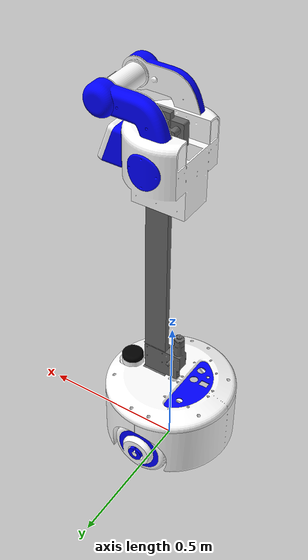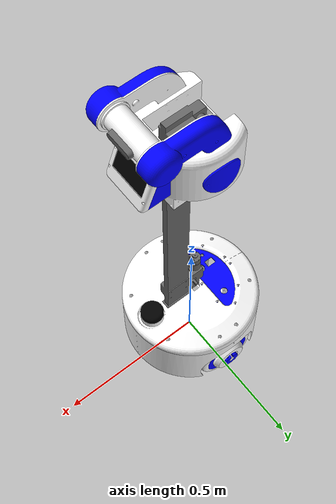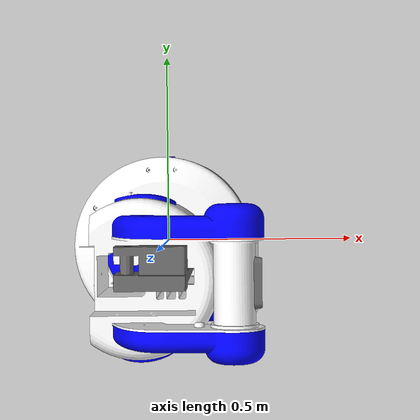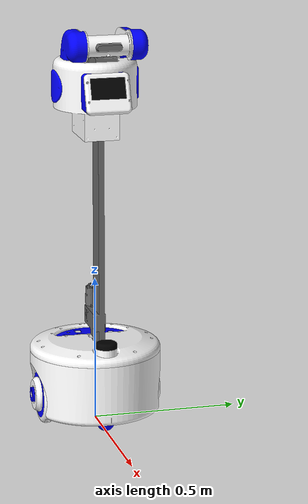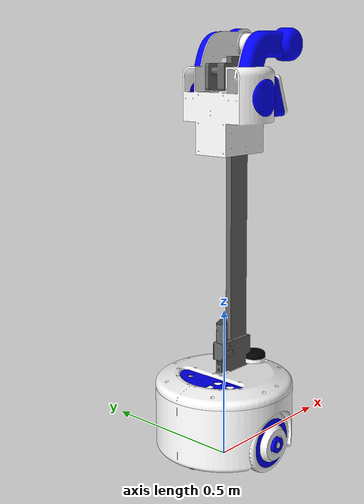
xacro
<?xml version="1.0" ?>
<robot name="rur_detailed" xmlns:xacro="http://www.ros.org/wiki/xacro">

<xacro:include filename="$(find rur_detailed_description)/urdf/materials.xacro" />

<xacro:include filename="$(find rur_detailed_description)/gazebo/rur_detailed_materials.gazebo" />
<xacro:include filename="$(find rur_detailed_description)/gazebo/rur_detailed_physics.gazebo" />
<xacro:include filename="$(find rur_detailed_description)/gazebo/rur_detailed_plugins.gazebo" />

<link name="base_link">
  <inertial>
    <origin rpy="0 0 0" xyz="0.008717050480319273 0.0013081620436010979 0.15115173825671988"/>
    <mass value="15.428530536945836"/>
    <inertia ixx="0.257115" ixy="0.001043" ixz="-0.003282" iyy="0.342385" iyz="-0.001055" izz="0.481029"/>
  </inertial>
  <visual>
    <origin rpy="0 0 0" xyz="0 0 0"/>
    <geometry>
      <mesh filename="package://rur_detailed_description/meshes/base_link.stl" scale="0.001 0.001 0.001"/>
    </geometry>
    <material name="white"/>
  </visual>
  <collision>
    <origin rpy="0 0 0" xyz="0 0 0"/>
    <geometry>
      <mesh filename="package://rur_detailed_description/meshes/base_link.stl" scale="0.001 0.001 0.001"/>
    </geometry>
  </collision>
</link>

<link name="right_wheel">
  <inertial>
    <origin rpy="0 0 0" xyz="-1.828063402709465e-05 0.05312247246161367 0.0002521115303902449"/>
    <mass value="9.856921104469992"/>
    <inertia ixx="0.020599" ixy="-7e-06" ixz="2e-06" iyy="0.03491" iyz="-2.8e-05" izz="0.020606"/>
  </inertial>
  <visual>
    <origin rpy="0 0 0" xyz="-0.0 0.227 -0.099839"/>
    <geometry>
      <mesh filename="package://rur_detailed_description/meshes/right_wheel.stl" scale="0.001 0.001 0.001"/>
    </geometry>
    <material name="blue"/>
  </visual>
  <collision>
    <origin rpy="0 0 0" xyz="-0.0 0.227 -0.099839"/>
    <geometry>
      <mesh filename="package://rur_detailed_description/meshes/right_wheel.stl" scale="0.001 0.001 0.001"/>
    </geometry>
  </collision>
</link>

<link name="left_wheel">
  <inertial>
    <origin rpy="0 0 0" xyz="-1.8254554994090065e-05 -0.0531169103077688 0.0002522130405125389"/>
    <mass value="9.871217353742987"/>
    <inertia ixx="0.020624" ixy="7e-06" ixz="2e-06" iyy="0.034948" iyz="2.8e-05" izz="0.020631"/>
  </inertial>
  <visual>
    <origin rpy="0 0 0" xyz="0.0 -0.227 -0.099839"/>
    <geometry>
      <mesh filename="package://rur_detailed_description/meshes/left_wheel.stl" scale="0.001 0.001 0.001"/>
    </geometry>
    <material name="blue"/>
  </visual>
  <collision>
    <origin rpy="0 0 0" xyz="0.0 -0.227 -0.099839"/>
    <geometry>
      <mesh filename="package://rur_detailed_description/meshes/left_wheel.stl" scale="0.001 0.001 0.001"/>
    </geometry>
  </collision>
</link>

<link name="right_tyre">
  <inertial>
    <origin rpy="0 0 0" xyz="-5.919068486634321e-08 0.011578960710706687 0.00016105311301901903"/>
    <mass value="4.766678644162142"/>
    <inertia ixx="0.012277" ixy="-0.0" ixz="0.0" iyy="0.022304" iyz="-0.0" izz="0.012277"/>
  </inertial>
  <visual>
    <origin rpy="0 0 0" xyz="-0.0 0.2 -0.1"/>
    <geometry>
      <mesh filename="package://rur_detailed_description/meshes/right_tyre.stl" scale="0.001 0.001 0.001"/>
    </geometry>
    <material name="white"/>
  </visual>
  <collision>
    <origin rpy="0 0 0" xyz="-0.0 0.2 -0.1"/>
    <geometry>
      <mesh filename="package://rur_detailed_description/meshes/right_tyre.stl" scale="0.001 0.001 0.001"/>
    </geometry>
  </collision>
</link>

<link name="left_tyre">
  <inertial>
    <origin rpy="0 0 0" xyz="9.30327782468428e-09 -0.011578963887744514 0.000161051324790773"/>
    <mass value="4.766678875971219"/>
    <inertia ixx="0.012277" ixy="0.0" ixz="-0.0" iyy="0.022304" iyz="0.0" izz="0.012277"/>
  </inertial>
  <visual>
    <origin rpy="0 0 0" xyz="0.0 -0.2 -0.1"/>
    <geometry>
      <mesh filename="package://rur_detailed_description/meshes/left_tyre.stl" scale="0.001 0.001 0.001"/>
    </geometry>
    <material name="white"/>
  </visual>
  <collision>
    <origin rpy="0 0 0" xyz="0.0 -0.2 -0.1"/>
    <geometry>
      <mesh filename="package://rur_detailed_description/meshes/left_tyre.stl" scale="0.001 0.001 0.001"/>
    </geometry>
  </collision>
</link>

<link name="front_caster">
  <inertial>
    <origin rpy="0 0 0" xyz="-0.025000797505036393 -2.9865544783409456e-16 -0.030208086053412367"/>
    <mass value="0.4573656248802168"/>
    <inertia ixx="0.000244" ixy="-0.0" ixz="0.0" iyy="0.000244" iyz="0.0" izz="0.000192"/>
  </inertial>
  <visual>
    <origin rpy="0 0 0" xyz="-0.172 -0.0 -0.07"/>
    <geometry>
      <mesh filename="package://rur_detailed_description/meshes/front_caster.stl" scale="0.001 0.001 0.001"/>
    </geometry>
    <material name="blue"/>
  </visual>
  <collision>
    <origin rpy="0 0 0" xyz="-0.172 -0.0 -0.07"/>
    <geometry>
      <mesh filename="package://rur_detailed_description/meshes/front_caster.stl" scale="0.001 0.001 0.001"/>
    </geometry>
  </collision>
</link>

<link name="back_caster">
  <inertial>
    <origin rpy="0 0 0" xyz="0.024999202494963513 -3.2214520215812444e-16 -0.030208086053412374"/>
    <mass value="0.4573656248802169"/>
    <inertia ixx="0.000244" ixy="-0.0" ixz="0.0" iyy="0.000244" iyz="0.0" izz="0.000192"/>
  </inertial>
  <visual>
    <origin rpy="0 0 0" xyz="0.172 0.0 -0.07"/>
    <geometry>
      <mesh filename="package://rur_detailed_description/meshes/back_caster.stl" scale="0.001 0.001 0.001"/>
    </geometry>
    <material name="blue"/>
  </visual>
  <collision>
    <origin rpy="0 0 0" xyz="0.172 0.0 -0.07"/>
    <geometry>
      <mesh filename="package://rur_detailed_description/meshes/back_caster.stl" scale="0.001 0.001 0.001"/>
    </geometry>
  </collision>
</link>

<link name="lid">
  <inertial>
    <origin rpy="0 0 0" xyz="-0.20973058370001274 -0.0002000297507654507 0.021779111268977636"/>
    <mass value="18.187373287828525"/>
    <inertia ixx="0.290093" ixy="0.0" ixz="-0.003295" iyy="0.300261" iyz="0.0" izz="0.584949"/>
  </inertial>
  <visual>
    <origin rpy="0 0 0" xyz="-0.225 -0.0002 -0.25"/>
    <geometry>
      <mesh filename="package://rur_detailed_description/meshes/lid.stl" scale="0.001 0.001 0.001"/>
    </geometry>
    <material name="white"/>
  </visual>
  <collision>
    <origin rpy="0 0 0" xyz="-0.225 -0.0002 -0.25"/>
    <geometry>
      <mesh filename="package://rur_detailed_description/meshes/lid.stl" scale="0.001 0.001 0.001"/>
    </geometry>
  </collision>
</link>

<link name="lidar">
  <inertial>
    <origin rpy="0 0 0" xyz="-2.3483549826952554e-09 -3.4770506128023716e-07 0.009561590682608923"/>
    <mass value="0.0886181648250366"/>
    <inertia ixx="3.3e-05" ixy="0.0" ixz="0.0" iyy="3.3e-05" iyz="0.0" izz="6e-05"/>
  </inertial>
  <visual>
    <origin rpy="0 0 0" xyz="-0.1575 0.0 -0.3"/>
    <geometry>
      <mesh filename="package://rur_detailed_description/meshes/lidar.stl" scale="0.001 0.001 0.001"/>
    </geometry>
    <material name="black"/>
  </visual>
  <collision>
    <origin rpy="0 0 0" xyz="-0.1575 0.0 -0.3"/>
    <geometry>
      <mesh filename="package://rur_detailed_description/meshes/lidar.stl" scale="0.001 0.001 0.001"/>
    </geometry>
  </collision>
</link>

<link name="electronics_lid">
  <inertial>
    <origin rpy="0 0 0" xyz="-0.0511574994774171 -0.011997734212864706 -0.0015000000000000568"/>
    <mass value="0.633989646973267"/>
    <inertia ixx="0.003384" ixy="-9e-06" ixz="-0.0" iyy="0.000771" iyz="0.0" izz="0.004153"/>
  </inertial>
  <visual>
    <origin rpy="0 0 0" xyz="0.035 -0.015 -0.28"/>
    <geometry>
      <mesh filename="package://rur_detailed_description/meshes/electronics_lid.stl" scale="0.001 0.001 0.001"/>
    </geometry>
    <material name="blue"/>
  </visual>
  <collision>
    <origin rpy="0 0 0" xyz="0.035 -0.015 -0.28"/>
    <geometry>
      <mesh filename="package://rur_detailed_description/meshes/electronics_lid.stl" scale="0.001 0.001 0.001"/>
    </geometry>
  </collision>
</link>

<link name="long_bar">
  <inertial>
    <origin rpy="0 0 0" xyz="0.03584192761999582 0.003225175684225926 0.4595434632519135"/>
    <mass value="7.553317644619513"/>
    <inertia ixx="1.13396" ixy="-0.000125" ixz="-0.002615" iyy="1.139907" iyz="-0.018664" izz="0.009557"/>
  </inertial>
  <visual>
    <origin rpy="0 0 0" xyz="-0.015 -0.0 -0.291"/>
    <geometry>
      <mesh filename="package://rur_detailed_description/meshes/long_bar.stl" scale="0.001 0.001 0.001"/>
    </geometry>
    <material name="grey"/>
  </visual>
  <collision>
    <origin rpy="0 0 0" xyz="-0.015 -0.0 -0.291"/>
    <geometry>
      <mesh filename="package://rur_detailed_description/meshes/long_bar.stl" scale="0.001 0.001 0.001"/>
    </geometry>
  </collision>
</link>

<link name="head">
  <inertial>
    <origin rpy="0 0 0" xyz="-0.07213061988974884 -0.0012048920814073697 0.13382726687589575"/>
    <mass value="23.76468895609019"/>
    <inertia ixx="0.240639" ixy="-0.001586" ixz="-0.018983" iyy="0.24109" iyz="-0.000966" izz="0.174627"/>
  </inertial>
  <visual>
    <origin rpy="0 0 0" xyz="-0.111 -0.0 -1.005"/>
    <geometry>
      <mesh filename="package://rur_detailed_description/meshes/head.stl" scale="0.001 0.001 0.001"/>
    </geometry>
    <material name="white"/>
  </visual>
  <collision>
    <origin rpy="0 0 0" xyz="-0.111 -0.0 -1.005"/>
    <geometry>
      <mesh filename="package://rur_detailed_description/meshes/head.stl" scale="0.001 0.001 0.001"/>
    </geometry>
  </collision>
</link>

<link name="visor">
  <inertial>
    <origin rpy="0 0 0" xyz="0.02896510148077766 0.0680499999999997 0.031790396670437815"/>
    <mass value="1.3383367623018805"/>
    <inertia ixx="0.007337" ixy="-0.0" ixz="0.000383" iyy="0.002215" iyz="0.0" izz="0.005868"/>
  </inertial>
  <visual>
    <origin rpy="0 0 0" xyz="-0.1393 0.068 -1.129264"/>
    <geometry>
      <mesh filename="package://rur_detailed_description/meshes/visor.stl" scale="0.001 0.001 0.001"/>
    </geometry>
    <material name="blue"/>
  </visual>
  <collision>
    <origin rpy="0 0 0" xyz="-0.1393 0.068 -1.129264"/>
    <geometry>
      <mesh filename="package://rur_detailed_description/meshes/visor.stl" scale="0.001 0.001 0.001"/>
    </geometry>
  </collision>
</link>

<link name="monitor_cover">
  <inertial>
    <origin rpy="0 0 0" xyz="0.025963694079177757 0.06804999764452557 -0.03724939393816329"/>
    <mass value="1.1102091778876433"/>
    <inertia ixx="0.005505" ixy="0.0" ixz="0.000808" iyy="0.002557" iyz="-0.0" izz="0.003622"/>
  </inertial>
  <visual>
    <origin rpy="0 0 0" xyz="-0.172658 0.068 -1.211058"/>
    <geometry>
      <mesh filename="package://rur_detailed_description/meshes/monitor_cover.stl" scale="0.001 0.001 0.001"/>
    </geometry>
    <material name="white"/>
  </visual>
  <collision>
    <origin rpy="0 0 0" xyz="-0.172658 0.068 -1.211058"/>
    <geometry>
      <mesh filename="package://rur_detailed_description/meshes/monitor_cover.stl" scale="0.001 0.001 0.001"/>
    </geometry>
  </collision>
</link>

<link name="right_ear">
  <inertial>
    <origin rpy="0 0 0" xyz="0.04558838834048603 -0.006250460774062022 2.75422459194985e-06"/>
    <mass value="0.05021038391016931"/>
    <inertia ixx="3.7e-05" ixy="-2e-06" ixz="0.0" iyy="7.5e-05" iyz="-0.0" izz="3.9e-05"/>
  </inertial>
  <visual>
    <origin rpy="0 0 0" xyz="0.02025 0.134173 -1.18"/>
    <geometry>
      <mesh filename="package://rur_detailed_description/meshes/right_ear.stl" scale="0.001 0.001 0.001"/>
    </geometry>
    <material name="blue"/>
  </visual>
  <collision>
    <origin rpy="0 0 0" xyz="0.02025 0.134173 -1.18"/>
    <geometry>
      <mesh filename="package://rur_detailed_description/meshes/right_ear.stl" scale="0.001 0.001 0.001"/>
    </geometry>
  </collision>
</link>

<link name="left_ear">
  <inertial>
    <origin rpy="0 0 0" xyz="0.04558838821639881 0.006350460758356213 2.7542230829347147e-06"/>
    <mass value="0.050210384315252085"/>
    <inertia ixx="3.7e-05" ixy="2e-06" ixz="0.0" iyy="7.5e-05" iyz="0.0" izz="3.9e-05"/>
  </inertial>
  <visual>
    <origin rpy="0 0 0" xyz="0.02025 -0.134173 -1.18"/>
    <geometry>
      <mesh filename="package://rur_detailed_description/meshes/left_ear.stl" scale="0.001 0.001 0.001"/>
    </geometry>
    <material name="blue"/>
  </visual>
  <collision>
    <origin rpy="0 0 0" xyz="0.02025 -0.134173 -1.18"/>
    <geometry>
      <mesh filename="package://rur_detailed_description/meshes/left_ear.stl" scale="0.001 0.001 0.001"/>
    </geometry>
  </collision>
</link>

<link name="monitor">
  <inertial>
    <origin rpy="0 0 0" xyz="0.010564793341225787 5.000000000079698e-05 -0.037888190449721026"/>
    <mass value="0.09619500000000142"/>
    <inertia ixx="0.000157" ixy="-0.0" ixz="1.4e-05" iyy="4.6e-05" iyz="0.0" izz="0.000123"/>
  </inertial>
  <visual>
    <origin rpy="0 0 0" xyz="-0.184031 -0.0 -1.231753"/>
    <geometry>
      <mesh filename="package://rur_detailed_description/meshes/monitor.stl" scale="0.001 0.001 0.001"/>
    </geometry>
    <material name="black"/>
  </visual>
  <collision>
    <origin rpy="0 0 0" xyz="-0.184031 -0.0 -1.231753"/>
    <geometry>
      <mesh filename="package://rur_detailed_description/meshes/monitor.stl" scale="0.001 0.001 0.001"/>
    </geometry>
  </collision>
</link>

<link name="left_antenna">
  <inertial>
    <origin rpy="0 0 0" xyz="-0.06681873348160798 0.027729801813354465 -0.006847664607670945"/>
    <mass value="0.185506067385235"/>
    <inertia ixx="0.000219" ixy="-5.3e-05" ixz="-0.000119" iyy="0.001161" iyz="-3e-06" izz="0.001025"/>
  </inertial>
  <visual>
    <origin rpy="0 0 0" xyz="-0.18275 -0.076 -1.335"/>
    <geometry>
      <mesh filename="package://rur_detailed_description/meshes/left_antenna.stl" scale="0.001 0.001 0.001"/>
    </geometry>
    <material name="blue"/>
  </visual>
  <collision>
    <origin rpy="0 0 0" xyz="-0.18275 -0.076 -1.335"/>
    <geometry>
      <mesh filename="package://rur_detailed_description/meshes/left_antenna.stl" scale="0.001 0.001 0.001"/>
    </geometry>
  </collision>
</link>

<link name="right_antenna">
  <inertial>
    <origin rpy="0 0 0" xyz="-0.06681872625021491 -0.027629817768358322 -0.006847111322377364"/>
    <mass value="0.18550683738354107"/>
    <inertia ixx="0.000219" ixy="5.3e-05" ixz="-0.000119" iyy="0.001161" iyz="3e-06" izz="0.001025"/>
  </inertial>
  <visual>
    <origin rpy="0 0 0" xyz="-0.18275 0.076 -1.335"/>
    <geometry>
      <mesh filename="package://rur_detailed_description/meshes/right_antenna.stl" scale="0.001 0.001 0.001"/>
    </geometry>
    <material name="blue"/>
  </visual>
  <collision>
    <origin rpy="0 0 0" xyz="-0.18275 0.076 -1.335"/>
    <geometry>
      <mesh filename="package://rur_detailed_description/meshes/right_antenna.stl" scale="0.001 0.001 0.001"/>
    </geometry>
  </collision>
</link>

<link name="camera_link">
  <inertial>
    <origin rpy="0 0 0" xyz="-0.001604468363459316 0.07205272744017827 -0.002548711859325259"/>
    <mass value="0.3739643327489875"/>
    <inertia ixx="0.001081" ixy="0.0" ixz="1e-06" iyy="0.000322" iyz="0.0" izz="0.001051"/>
  </inertial>
  <visual>
    <origin rpy="0 0 0" xyz="-0.18275 0.072 -1.335"/>
    <geometry>
      <mesh filename="package://rur_detailed_description/meshes/camera_link.stl" scale="0.001 0.001 0.001"/>
    </geometry>
    <material name="white"/>
  </visual>
  <collision>
    <origin rpy="0 0 0" xyz="-0.18275 0.072 -1.335"/>
    <geometry>
      <mesh filename="package://rur_detailed_description/meshes/camera_link.stl" scale="0.001 0.001 0.001"/>
    </geometry>
  </collision>
</link>

<link name="realsense">
  <inertial>
    <origin rpy="0 0 0" xyz="0.004830412362641728 5.000000000015024e-05 0.00650000017136354"/>
    <mass value="0.03735280587989202"/>
    <inertia ixx="2.3e-05" ixy="0.0" ixz="0.0" iyy="3e-06" iyz="0.0" izz="2.2e-05"/>
  </inertial>
  <visual>
    <origin rpy="0 0 0" xyz="-0.213442 -0.0 -1.3275"/>
    <geometry>
      <mesh filename="package://rur_detailed_description/meshes/realsense.stl" scale="0.001 0.001 0.001"/>
    </geometry>
    <material name="grey"/>
  </visual>
  <collision>
    <origin rpy="0 0 0" xyz="-0.213442 -0.0 -1.3275"/>
    <geometry>
      <mesh filename="package://rur_detailed_description/meshes/realsense.stl" scale="0.001 0.001 0.001"/>
    </geometry>
  </collision>
</link>

<joint name="motor_right" type="continuous">
  <origin rpy="0 0 0" xyz="0.0 -0.227 0.099839"/>
  <parent link="base_link"/>
  <child link="right_wheel"/>
  <axis xyz="0.0 1.0 0.0"/>
</joint>

<joint name="motor_left" type="continuous">
  <origin rpy="0 0 0" xyz="0.0 0.227 0.099839"/>
  <parent link="base_link"/>
  <child link="left_wheel"/>
  <axis xyz="0.0 1.0 0.0"/>
</joint>

<joint name="Rigid3" type="fixed">
  <origin rpy="0 0 0" xyz="0.0 0.027 0.000161"/>
  <parent link="right_wheel"/>
  <child link="right_tyre"/>
</joint>

<joint name="Rigid4" type="fixed">
  <origin rpy="0 0 0" xyz="0.0 -0.027 0.000161"/>
  <parent link="left_wheel"/>
  <child link="left_tyre"/>
</joint>

<joint name="Rigid5" type="fixed">
  <origin rpy="0 0 0" xyz="0.172 0.0 0.07"/>
  <parent link="base_link"/>
  <child link="front_caster"/>
</joint>

<joint name="Rigid6" type="fixed">
  <origin rpy="0 0 0" xyz="-0.172 0.0 0.07"/>
  <parent link="base_link"/>
  <child link="back_caster"/>
</joint>

<joint name="Rigid7" type="fixed">
  <origin rpy="0 0 0" xyz="0.225 0.0002 0.25"/>
  <parent link="base_link"/>
  <child link="lid"/>
</joint>

<joint name="Rigid8" type="fixed">
  <origin rpy="0 0 0" xyz="-0.0675 -0.0002 0.05"/>
  <parent link="lid"/>
  <child link="lidar"/>
</joint>

<joint name="Rigid9" type="fixed">
  <origin rpy="0 0 0" xyz="-0.26 0.0148 0.03"/>
  <parent link="lid"/>
  <child link="electronics_lid"/>
</joint>

<joint name="Rigid10" type="fixed">
  <origin rpy="0 0 0" xyz="-0.21 -0.0002 0.041"/>
  <parent link="lid"/>
  <child link="long_bar"/>
</joint>

<joint name="slider" type="fixed">
  <origin rpy="0 0 0" xyz="0.096 0.0 0.714"/>
  <parent link="long_bar"/>
  <child link="head"/>
</joint>

<joint name="Rigid12" type="fixed">
  <origin rpy="0 0 0" xyz="0.0283 -0.068 0.124264"/>
  <parent link="head"/>
  <child link="visor"/>
</joint>

<joint name="Rigid13" type="fixed">
  <origin rpy="0 0 0" xyz="0.033358 0.0 0.081794"/>
  <parent link="visor"/>
  <child link="monitor_cover"/>
</joint>

<joint name="Rigid14" type="fixed">
  <origin rpy="0 0 0" xyz="-0.13125 -0.134173 0.175"/>
  <parent link="head"/>
  <child link="right_ear"/>
</joint>

<joint name="Rigid15" type="fixed">
  <origin rpy="0 0 0" xyz="-0.13125 0.134173 0.175"/>
  <parent link="head"/>
  <child link="left_ear"/>
</joint>

<joint name="Rigid16" type="fixed">
  <origin rpy="0 0 0" xyz="0.011373 0.068 0.020695"/>
  <parent link="monitor_cover"/>
  <child link="monitor"/>
</joint>

<joint name="Rigid17" type="fixed">
  <origin rpy="0 0 0" xyz="0.07175 0.076 0.33"/>
  <parent link="head"/>
  <child link="left_antenna"/>
</joint>

<joint name="Rigid18" type="fixed">
  <origin rpy="0 0 0" xyz="0.07175 -0.076 0.33"/>
  <parent link="head"/>
  <child link="right_antenna"/>
</joint>

<joint name="camera_joint" type="fixed">
  <origin rpy="0 0 0" xyz="0.07175 -0.072 0.33"/>
  <parent link="head"/>
  <child link="camera_link"/>
</joint>

<joint name="Rigid20" type="fixed">
  <origin rpy="0 0 0" xyz="0.030692 0.072 -0.0075"/>
  <parent link="camera_link"/>
  <child link="realsense"/>
</joint>

</robot>

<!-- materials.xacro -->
<robot name="rur_detailed" xmlns:xacro="http://www.ros.org/wiki/xacro" >

<material name="white">
  <color rgba="01.00 01.00 01.00 1.000"/>
</material>

<material name="blue">
  <color rgba="00.00 00.00 01.00 1.000"/>
</material>

<material name="black">
  <color rgba="00.00 00.00 00.00 1.000"/>
</material>

<material name="grey">
  <color rgba="00.40 00.40 00.40 1.000"/>
</material>

</robot>

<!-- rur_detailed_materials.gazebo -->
<robot name="rur_detailed" xmlns:xacro="http://www.ros.org/wiki/xacro" >

<xacro:property name="body_color" value="Gazebo/White" />
<xacro:property name="blue_color" value="Gazebo/Blue" />
<xacro:property name="lidar_color" value="Gazebo/Black" />
<xacro:property name="metal_color" value="Gazebo/Grey" />
<xacro:property name="screen_color" value="Gazebo/Black" />

<!-- ############# WHITE COLOR ############# -->

<gazebo reference="base_link">
  <material>${body_color}</material>
</gazebo>

<gazebo reference="right_tyre">
  <material>${body_color}</material>
</gazebo>

<gazebo reference="left_tyre">
  <material>${body_color}</material>
</gazebo>

<gazebo reference="lid">
  <material>${body_color}</material>
</gazebo>

<gazebo reference="head">
  <material>${body_color}</material>
</gazebo>

<gazebo reference="monitor_cover">
  <material>${body_color}</material>
</gazebo>

<gazebo reference="camera_link">
  <material>${body_color}</material>
</gazebo>

<gazebo reference="realsense">
  <material>${body_color}</material>
</gazebo>

<!-- ################ BLUE COLOR ################ -->

<gazebo reference="right_wheel">
  <material>${blue_color}</material>
</gazebo>

<gazebo reference="left_wheel">
  <material>${blue_color}</material>
</gazebo>

<gazebo reference="front_caster">
  <material>${blue_color}</material>
</gazebo>

<gazebo reference="back_caster">
  <material>${blue_color}</material>
</gazebo>

<gazebo reference="electronics_lid">
  <material>${blue_color}</material>
</gazebo>

<gazebo reference="visor">
  <material>${blue_color}</material>
</gazebo>

<gazebo reference="right_ear">
  <material>${blue_color}</material>
</gazebo>

<gazebo reference="left_ear">
  <material>${blue_color}</material>
</gazebo>

<gazebo reference="left_antenna">
  <material>${blue_color}</material>
</gazebo>

<gazebo reference="right_antenna">
  <material>${blue_color}</material>
</gazebo>

<!-- ################ LIDAR COLOR ################ -->

<gazebo reference="lidar">
  <material>${lidar_color}</material>
</gazebo>

<!-- ################ METAL COLOR ################ -->

<gazebo reference="long_bar">
  <material>${metal_color}</material>
</gazebo>

<!-- ################ SCREEN COLOR ################ -->

<gazebo reference="monitor">
  <material>${screen_color}</material>
</gazebo>

</robot>
